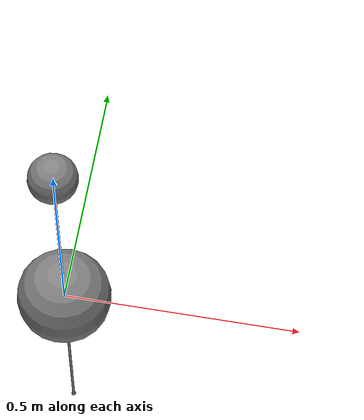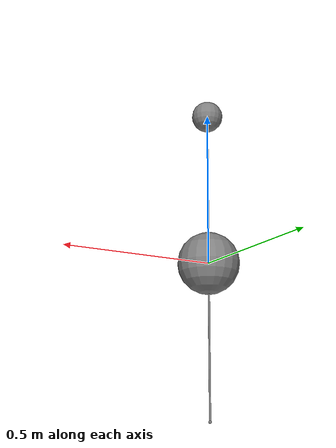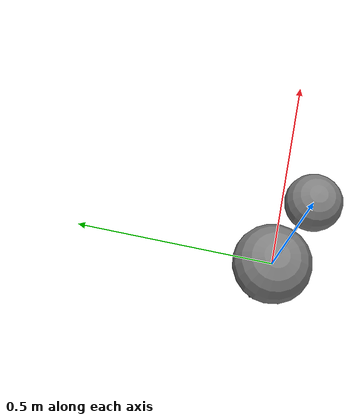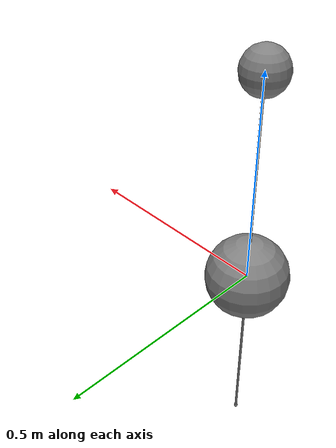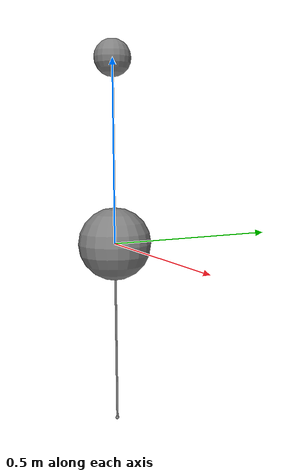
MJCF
<mujoco>
      <worldbody>
        <body name="b1" pos="0 0 0.5">
          <joint name="j1" type="hinge" axis="0 1 0"/>
          <geom type="sphere" size="0.05"/>
          <site name="s1" pos="0 0 0"/>
        </body>
        <body name="wrap" pos="0 0 0">
          <geom name="g1" type="sphere" size="0.1"/>
        </body>
        <body name="b2" pos="0 0 -0.5">
          <site name="s2" pos="0 0 0"/>
        </body>
      </worldbody>
      <tendon>
        <spatial name="bad">
          <geom geom="g1"/>
          <site site="s1"/>
          <site site="s2"/>
        </spatial>
      </tendon>
    </mujoco>
